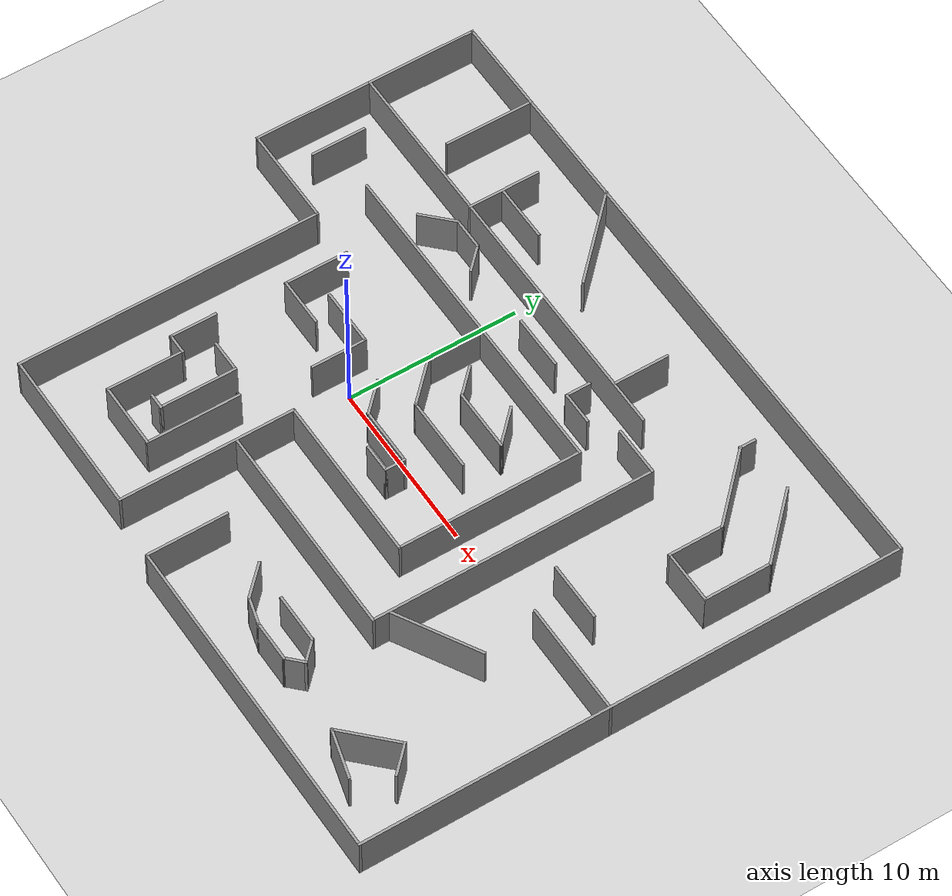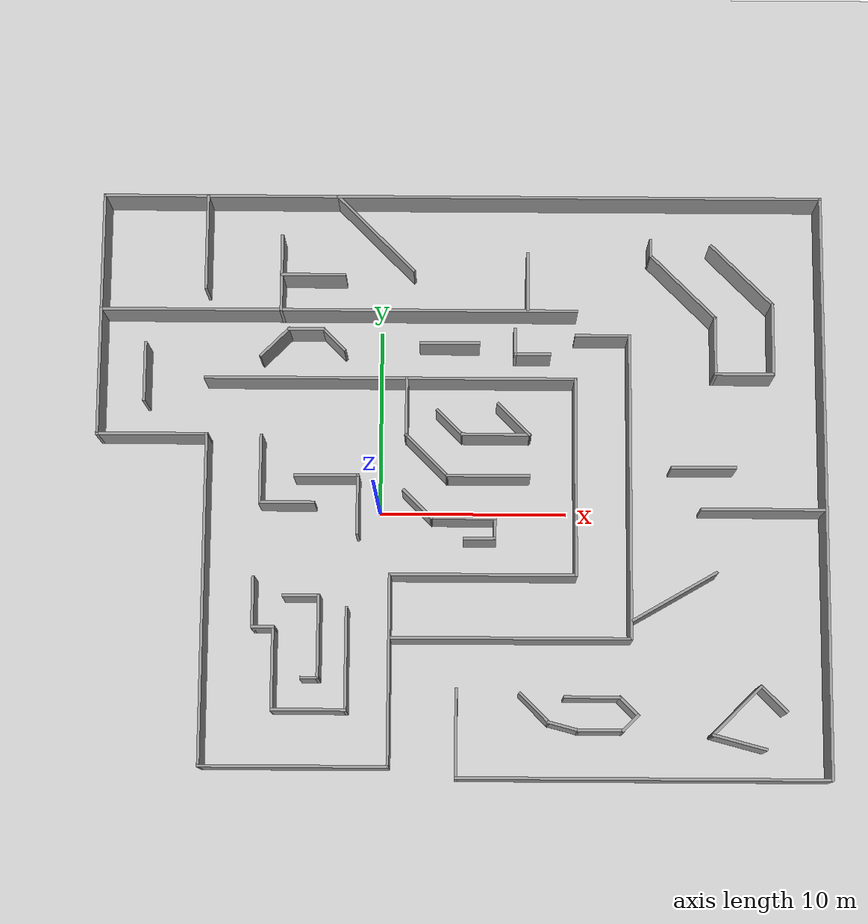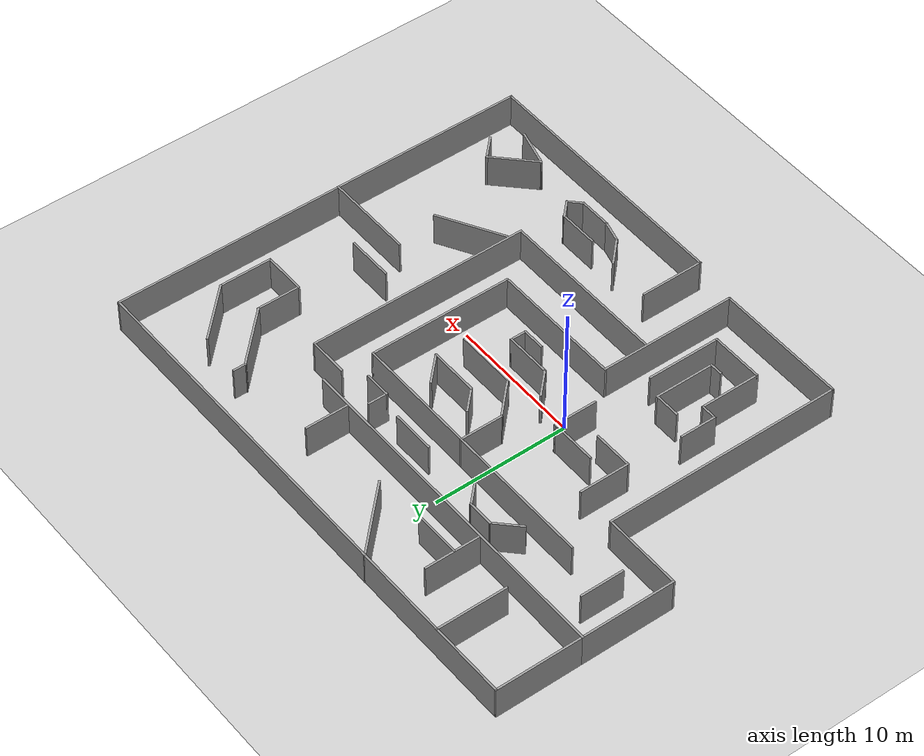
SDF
<?xml version='1.0'?>
<sdf version='1.6'>

<world name="my_map">
    <!-- A global light source -->
    <include>
      <uri>model://sun</uri>
    </include>
    <!-- A ground plane -->
    <include>
      <uri>model://ground_plane</uri>
    </include>
  <model name='maze_rooms'>
    <pose frame=''>4.33483 1.4249 0 0 -0 0</pose>
    <link name='Wall_10'>
      <collision name='Wall_10_Collision'>
        <geometry>
          <box>
            <size>25.75 0.15 2.5</size>
          </box>
        </geometry>
        <pose frame=''>0 0 1.25 0 -0 0</pose>
      </collision>
      <visual name='Wall_10_Visual'>
        <pose frame=''>0 0 1.25 0 -0 0</pose>
        <geometry>
          <box>
            <size>25.75 0.15 2.5</size>
          </box>
        </geometry>
        <material>
          <script>
            <uri>file://media/materials/scripts/gazebo.material</uri>
            <name>Gazebo/Grey</name>
          </script>
          <ambient>1 1 1 1</ambient>
        </material>
        <meta>
          <layer>0</layer>
        </meta>
      </visual>
      <pose frame=''>-6.62767 9.3062 0 0 -0 0</pose>
    </link>
    <link name='Wall_12'>
      <collision name='Wall_12_Collision'>
        <geometry>
          <box>
            <size>3 0.15 2.5</size>
          </box>
        </geometry>
        <pose frame=''>0 0 1.25 0 -0 0</pose>
      </collision>
      <visual name='Wall_12_Visual'>
        <pose frame=''>0 0 1.25 0 -0 0</pose>
        <geometry>
          <box>
            <size>3 0.15 2.5</size>
          </box>
        </geometry>
        <material>
          <script>
            <uri>file://media/materials/scripts/gazebo.material</uri>
            <name>Gazebo/Grey</name>
          </script>
          <ambient>1 1 1 1</ambient>
        </material>
        <meta>
          <layer>0</layer>
        </meta>
      </visual>
      <pose frame=''>7.59733 7.9562 0 0 -0 0</pose>
    </link>
    <link name='Wall_13'>
      <collision name='Wall_13_Collision'>
        <geometry>
          <box>
            <size>16.5 0.15 2.5</size>
          </box>
        </geometry>
        <pose frame=''>0 0 1.25 0 -0 0</pose>
      </collision>
      <visual name='Wall_13_Visual'>
        <pose frame=''>0 0 1.25 0 -0 0</pose>
        <geometry>
          <box>
            <size>16.5 0.15 2.5</size>
          </box>
        </geometry>
        <material>
          <script>
            <uri>file://media/materials/scripts/gazebo.material</uri>
            <name>Gazebo/Grey</name>
          </script>
          <ambient>1 1 1 1</ambient>
        </material>
        <meta>
          <layer>0</layer>
        </meta>
      </visual>
      <pose frame=''>9.02233 -0.218797 0 0 -0 -1.5708</pose>
    </link>
    <link name='Wall_14'>
      <collision name='Wall_14_Collision'>
        <geometry>
          <box>
            <size>12.75 0.15 2.5</size>
          </box>
        </geometry>
        <pose frame=''>0 0 1.25 0 -0 0</pose>
      </collision>
      <visual name='Wall_14_Visual'>
        <pose frame=''>0 0 1.25 0 -0 0</pose>
        <geometry>
          <box>
            <size>12.75 0.15 2.5</size>
          </box>
        </geometry>
        <material>
          <script>
            <uri>file://media/materials/scripts/gazebo.material</uri>
            <name>Gazebo/Grey</name>
          </script>
          <ambient>1 1 1 1</ambient>
        </material>
        <meta>
          <layer>0</layer>
        </meta>
      </visual>
      <pose frame=''>2.72233 -8.3938 0 0 -0 3.14159</pose>
    </link>
    <link name='Wall_16'>
      <collision name='Wall_16_Collision'>
        <geometry>
          <box>
            <size>3.75 0.15 2.5</size>
          </box>
        </geometry>
        <pose frame=''>0 0 1.25 0 -0 0</pose>
      </collision>
      <visual name='Wall_16_Visual'>
        <pose frame=''>0 0 1.25 0 -0 0</pose>
        <geometry>
          <box>
            <size>3.75 0.15 2.5</size>
          </box>
        </geometry>
        <material>
          <script>
            <uri>file://media/materials/scripts/gazebo.material</uri>
            <name>Gazebo/Grey</name>
          </script>
          <ambient>1 1 1 1</ambient>
        </material>
        <meta>
          <layer>0</layer>
        </meta>
      </visual>
      <pose frame=''>-10.6624 0.583135 0 0 -0 -1.5708</pose>
    </link>
    <link name='Wall_17'>
      <collision name='Wall_17_Collision'>
        <geometry>
          <box>
            <size>3 0.15 2.5</size>
          </box>
        </geometry>
        <pose frame=''>0 0 1.25 0 -0 0</pose>
      </collision>
      <visual name='Wall_17_Visual'>
        <pose frame=''>0 0 1.25 0 -0 0</pose>
        <geometry>
          <box>
            <size>3 0.15 2.5</size>
          </box>
        </geometry>
        <material>
          <script>
            <uri>file://media/materials/scripts/gazebo.material</uri>
            <name>Gazebo/Grey</name>
          </script>
          <ambient>1 1 1 1</ambient>
        </material>
        <meta>
          <layer>0</layer>
        </meta>
      </visual>
      <pose frame=''>-9.23743 -1.21687 0 0 -0 0</pose>
    </link>
    <link name='Wall_19'>
      <collision name='Wall_19_Collision'>
        <geometry>
          <box>
            <size>3.5 0.15 2.5</size>
          </box>
        </geometry>
        <pose frame=''>0 0 1.25 0 -0 0</pose>
      </collision>
      <visual name='Wall_19_Visual'>
        <pose frame=''>0 0 1.25 0 -0 0</pose>
        <geometry>
          <box>
            <size>3.5 0.15 2.5</size>
          </box>
        </geometry>
        <material>
          <script>
            <uri>file://media/materials/scripts/gazebo.material</uri>
            <name>Gazebo/Grey</name>
          </script>
          <ambient>1 1 1 1</ambient>
        </material>
        <meta>
          <layer>0</layer>
        </meta>
      </visual>
      <pose frame=''>-7.15202 0.255119 0 0 -0 0</pose>
    </link>
    <link name='Wall_2'>
      <collision name='Wall_2_Collision'>
        <geometry>
          <box>
            <size>20 0.15 2.5</size>
          </box>
        </geometry>
        <pose frame=''>0 0 1.25 0 -0 0</pose>
      </collision>
      <visual name='Wall_2_Visual'>
        <pose frame=''>0 0 1.25 0 -0 0</pose>
        <geometry>
          <box>
            <size>20 0.15 2.5</size>
          </box>
        </geometry>
        <material>
          <script>
            <uri>file://media/materials/scripts/gazebo.material</uri>
            <name>Gazebo/Grey</name>
          </script>
          <ambient>1 1 1 1</ambient>
        </material>
        <meta>
          <layer>0</layer>
        </meta>
      </visual>
      <pose frame=''>-3.80267 5.5562 0 0 -0 0</pose>
    </link>
    <link name='Wall_20'>
      <collision name='Wall_20_Collision'>
        <geometry>
          <box>
            <size>3.25 0.15 2.5</size>
          </box>
        </geometry>
        <pose frame=''>0 0 1.25 0 -0 0</pose>
      </collision>
      <visual name='Wall_20_Visual'>
        <pose frame=''>0 0 1.25 0 -0 0</pose>
        <geometry>
          <box>
            <size>3.25 0.15 2.5</size>
          </box>
        </geometry>
        <material>
          <script>
            <uri>file://media/materials/scripts/gazebo.material</uri>
            <name>Gazebo/Grey</name>
          </script>
          <ambient>1 1 1 1</ambient>
        </material>
        <meta>
          <layer>0</layer>
        </meta>
      </visual>
      <pose frame=''>-5.47702 -1.29488 0 0 -0 -1.5708</pose>
    </link>
    <link name='Wall_22'>
      <collision name='Wall_22_Collision'>
        <geometry>
          <box>
            <size>2.75 0.15 2.5</size>
          </box>
        </geometry>
        <pose frame=''>0 0 1.25 0 -0 0</pose>
      </collision>
      <visual name='Wall_22_Visual'>
        <pose frame=''>0 0 1.25 0 -0 0</pose>
        <geometry>
          <box>
            <size>2.75 0.15 2.5</size>
          </box>
        </geometry>
        <material>
          <script>
            <uri>file://media/materials/scripts/gazebo.material</uri>
            <name>Gazebo/Grey</name>
          </script>
          <ambient>1 1 1 1</ambient>
        </material>
        <meta>
          <layer>0</layer>
        </meta>
      </visual>
      <pose frame=''>-10.9284 -6.55112 0 0 -0 -1.5708</pose>
    </link>
    <link name='Wall_23'>
      <collision name='Wall_23_Collision'>
        <geometry>
          <box>
            <size>1.25 0.15 2.5</size>
          </box>
        </geometry>
        <pose frame=''>0 0 1.25 0 -0 0</pose>
      </collision>
      <visual name='Wall_23_Visual'>
        <pose frame=''>0 0 1.25 0 -0 0</pose>
        <geometry>
          <box>
            <size>1.25 0.15 2.5</size>
          </box>
        </geometry>
        <material>
          <script>
            <uri>file://media/materials/scripts/gazebo.material</uri>
            <name>Gazebo/Grey</name>
          </script>
          <ambient>1 1 1 1</ambient>
        </material>
        <meta>
          <layer>0</layer>
        </meta>
      </visual>
      <pose frame=''>-10.3784 -7.85112 0 0 -0 0</pose>
    </link>
    <link name='Wall_24'>
      <collision name='Wall_24_Collision'>
        <geometry>
          <box>
            <size>4.5 0.15 2.5</size>
          </box>
        </geometry>
        <pose frame=''>0 0 1.25 0 -0 0</pose>
      </collision>
      <visual name='Wall_24_Visual'>
        <pose frame=''>0 0 1.25 0 -0 0</pose>
        <geometry>
          <box>
            <size>4.5 0.15 2.5</size>
          </box>
        </geometry>
        <material>
          <script>
            <uri>file://media/materials/scripts/gazebo.material</uri>
            <name>Gazebo/Grey</name>
          </script>
          <ambient>1 1 1 1</ambient>
        </material>
        <meta>
          <layer>0</layer>
        </meta>
      </visual>
      <pose frame=''>-9.82843 -10.0261 0 0 -0 -1.5708</pose>
    </link>
    <link name='Wall_25'>
      <collision name='Wall_25_Collision'>
        <geometry>
          <box>
            <size>4 0.15 2.5</size>
          </box>
        </geometry>
        <pose frame=''>0 0 1.25 0 -0 0</pose>
      </collision>
      <visual name='Wall_25_Visual'>
        <pose frame=''>0 0 1.25 0 -0 0</pose>
        <geometry>
          <box>
            <size>4 0.15 2.5</size>
          </box>
        </geometry>
        <material>
          <script>
            <uri>file://media/materials/scripts/gazebo.material</uri>
            <name>Gazebo/Grey</name>
          </script>
          <ambient>1 1 1 1</ambient>
        </material>
        <meta>
          <layer>0</layer>
        </meta>
      </visual>
      <pose frame=''>-7.90343 -12.2011 0 0 -0 0</pose>
    </link>
    <link name='Wall_26'>
      <collision name='Wall_26_Collision'>
        <geometry>
          <box>
            <size>5.5 0.15 2.5</size>
          </box>
        </geometry>
        <pose frame=''>0 0 1.25 0 -0 0</pose>
      </collision>
      <visual name='Wall_26_Visual'>
        <pose frame=''>0 0 1.25 0 -0 0</pose>
        <geometry>
          <box>
            <size>5.5 0.15 2.5</size>
          </box>
        </geometry>
        <material>
          <script>
            <uri>file://media/materials/scripts/gazebo.material</uri>
            <name>Gazebo/Grey</name>
          </script>
          <ambient>1 1 1 1</ambient>
        </material>
        <meta>
          <layer>0</layer>
        </meta>
      </visual>
      <pose frame=''>-5.97843 -9.52612 0 0 -0 1.5708</pose>
    </link>
    <link name='Wall_28'>
      <collision name='Wall_28_Collision'>
        <geometry>
          <box>
            <size>2 0.15 2.5</size>
          </box>
        </geometry>
        <pose frame=''>0 0 1.25 0 -0 0</pose>
      </collision>
      <visual name='Wall_28_Visual'>
        <pose frame=''>0 0 1.25 0 -0 0</pose>
        <geometry>
          <box>
            <size>2 0.15 2.5</size>
          </box>
        </geometry>
        <material>
          <script>
            <uri>file://media/materials/scripts/gazebo.material</uri>
            <name>Gazebo/Grey</name>
          </script>
          <ambient>1 1 1 1</ambient>
        </material>
        <meta>
          <layer>0</layer>
        </meta>
      </visual>
      <pose frame=''>-8.38082 -6.18213 0 0 -0 0</pose>
    </link>
    <link name='Wall_29'>
      <collision name='Wall_29_Collision'>
        <geometry>
          <box>
            <size>4.5 0.15 2.5</size>
          </box>
        </geometry>
        <pose frame=''>0 0 1.25 0 -0 0</pose>
      </collision>
      <visual name='Wall_29_Visual'>
        <pose frame=''>0 0 1.25 0 -0 0</pose>
        <geometry>
          <box>
            <size>4.5 0.15 2.5</size>
          </box>
        </geometry>
        <material>
          <script>
            <uri>file://media/materials/scripts/gazebo.material</uri>
            <name>Gazebo/Grey</name>
          </script>
          <ambient>1 1 1 1</ambient>
        </material>
        <meta>
          <layer>0</layer>
        </meta>
      </visual>
      <pose frame=''>-7.45582 -8.35713 0 0 -0 -1.5708</pose>
    </link>
    <link name='Wall_3'>
      <collision name='Wall_3_Collision'>
        <geometry>
          <box>
            <size>10.75 0.15 2.5</size>
          </box>
        </geometry>
        <pose frame=''>0 0 1.25 0 -0 0</pose>
      </collision>
      <visual name='Wall_3_Visual'>
        <pose frame=''>0 0 1.25 0 -0 0</pose>
        <geometry>
          <box>
            <size>10.75 0.15 2.5</size>
          </box>
        </geometry>
        <material>
          <script>
            <uri>file://media/materials/scripts/gazebo.material</uri>
            <name>Gazebo/Grey</name>
          </script>
          <ambient>1 1 1 1</ambient>
        </material>
        <meta>
          <layer>0</layer>
        </meta>
      </visual>
      <pose frame=''>6.12233 0.256203 0 0 -0 -1.5708</pose>
    </link>
    <link name='Wall_30'>
      <collision name='Wall_30_Collision'>
        <geometry>
          <box>
            <size>1 0.15 2.5</size>
          </box>
        </geometry>
        <pose frame=''>0 0 1.25 0 -0 0</pose>
      </collision>
      <visual name='Wall_30_Visual'>
        <pose frame=''>0 0 1.25 0 -0 0</pose>
        <geometry>
          <box>
            <size>1 0.15 2.5</size>
          </box>
        </geometry>
        <material>
          <script>
            <uri>file://media/materials/scripts/gazebo.material</uri>
            <name>Gazebo/Grey</name>
          </script>
          <ambient>1 1 1 1</ambient>
        </material>
        <meta>
          <layer>0</layer>
        </meta>
      </visual>
      <pose frame=''>-7.88082 -10.5321 0 0 -0 3.14159</pose>
    </link>
    <link name='Wall_32'>
      <collision name='Wall_32_Collision'>
        <geometry>
          <box>
            <size>3.25 0.15 2.5</size>
          </box>
        </geometry>
        <pose frame=''>0 0 1.25 0 -0 0</pose>
      </collision>
      <visual name='Wall_32_Visual'>
        <pose frame=''>0 0 1.25 0 -0 0</pose>
        <geometry>
          <box>
            <size>3.25 0.15 2.5</size>
          </box>
        </geometry>
        <material>
          <script>
            <uri>file://media/materials/scripts/gazebo.material</uri>
            <name>Gazebo/Grey</name>
          </script>
          <ambient>1 1 1 1</ambient>
        </material>
        <meta>
          <layer>0</layer>
        </meta>
      </visual>
      <pose frame=''>-2.92177 4.01294 0 0 -0 1.5708</pose>
    </link>
    <link name='Wall_34'>
      <collision name='Wall_34_Collision'>
        <geometry>
          <box>
            <size>3.25 0.15 2.5</size>
          </box>
        </geometry>
        <pose frame=''>0 0 1.25 0 -0 0</pose>
      </collision>
      <visual name='Wall_34_Visual'>
        <pose frame=''>0 0 1.25 0 -0 0</pose>
        <geometry>
          <box>
            <size>3.25 0.15 2.5</size>
          </box>
        </geometry>
        <material>
          <script>
            <uri>file://media/materials/scripts/gazebo.material</uri>
            <name>Gazebo/Grey</name>
          </script>
          <ambient>1 1 1 1</ambient>
        </material>
        <meta>
          <layer>0</layer>
        </meta>
      </visual>
      <pose frame=''>-1.82576 1.36692 0 0 -0 -0.785398</pose>
    </link>
    <link name='Wall_35'>
      <collision name='Wall_35_Collision'>
        <geometry>
          <box>
            <size>4.5 0.15 2.5</size>
          </box>
        </geometry>
        <pose frame=''>0 0 1.25 0 -0 0</pose>
      </collision>
      <visual name='Wall_35_Visual'>
        <pose frame=''>0 0 1.25 0 -0 0</pose>
        <geometry>
          <box>
            <size>4.5 0.15 2.5</size>
          </box>
        </geometry>
        <material>
          <script>
            <uri>file://media/materials/scripts/gazebo.material</uri>
            <name>Gazebo/Grey</name>
          </script>
          <ambient>1 1 1 1</ambient>
        </material>
        <meta>
          <layer>0</layer>
        </meta>
      </visual>
      <pose frame=''>1.44526 0.270905 0 0 -0 0</pose>
    </link>
    <link name='Wall_37'>
      <collision name='Wall_37_Collision'>
        <geometry>
          <box>
            <size>2.5 0.15 2.5</size>
          </box>
        </geometry>
        <pose frame=''>0 0 1.25 0 -0 0</pose>
      </collision>
      <visual name='Wall_37_Visual'>
        <pose frame=''>0 0 1.25 0 -0 0</pose>
        <geometry>
          <box>
            <size>2.5 0.15 2.5</size>
          </box>
        </geometry>
        <material>
          <script>
            <uri>file://media/materials/scripts/gazebo.material</uri>
            <name>Gazebo/Grey</name>
          </script>
          <ambient>1 1 1 1</ambient>
        </material>
        <meta>
          <layer>0</layer>
        </meta>
      </visual>
      <pose frame=''>2.82208 3.34075 0 0 -0 -0.785398</pose>
    </link>
    <link name='Wall_38'>
      <collision name='Wall_38_Collision'>
        <geometry>
          <box>
            <size>3.75 0.15 2.5</size>
          </box>
        </geometry>
        <pose frame=''>0 0 1.25 0 -0 0</pose>
      </collision>
      <visual name='Wall_38_Visual'>
        <pose frame=''>0 0 1.25 0 -0 0</pose>
        <geometry>
          <box>
            <size>3.75 0.15 2.5</size>
          </box>
        </geometry>
        <material>
          <script>
            <uri>file://media/materials/scripts/gazebo.material</uri>
            <name>Gazebo/Grey</name>
          </script>
          <ambient>1 1 1 1</ambient>
        </material>
        <meta>
          <layer>0</layer>
        </meta>
      </visual>
      <pose frame=''>1.85293 2.5099 0 0 -0 3.14159</pose>
    </link>
    <link name='Wall_39'>
      <collision name='Wall_39_Collision'>
        <geometry>
          <box>
            <size>2 0.15 2.5</size>
          </box>
        </geometry>
        <pose frame=''>0 0 1.25 0 -0 0</pose>
      </collision>
      <visual name='Wall_39_Visual'>
        <pose frame=''>0 0 1.25 0 -0 0</pose>
        <geometry>
          <box>
            <size>2 0.15 2.5</size>
          </box>
        </geometry>
        <material>
          <script>
            <uri>file://media/materials/scripts/gazebo.material</uri>
            <name>Gazebo/Grey</name>
          </script>
          <ambient>1 1 1 1</ambient>
        </material>
        <meta>
          <layer>0</layer>
        </meta>
      </visual>
      <pose frame=''>-0.601146 3.16397 0 0 -0 2.35619</pose>
    </link>
    <link name='Wall_4'>
      <collision name='Wall_4_Collision'>
        <geometry>
          <box>
            <size>10 0.15 2.5</size>
          </box>
        </geometry>
        <pose frame=''>0 0 1.25 0 -0 0</pose>
      </collision>
      <visual name='Wall_4_Visual'>
        <pose frame=''>0 0 1.25 0 -0 0</pose>
        <geometry>
          <box>
            <size>10 0.15 2.5</size>
          </box>
        </geometry>
        <material>
          <script>
            <uri>file://media/materials/scripts/gazebo.material</uri>
            <name>Gazebo/Grey</name>
          </script>
          <ambient>1 1 1 1</ambient>
        </material>
        <meta>
          <layer>0</layer>
        </meta>
      </visual>
      <pose frame=''>1.19733 -5.0438 0 0 -0 3.14159</pose>
    </link>
    <link name='Wall_41'>
      <collision name='Wall_41_Collision'>
        <geometry>
          <box>
            <size>3.25 0.15 2.5</size>
          </box>
        </geometry>
        <pose frame=''>0 0 1.25 0 -0 0</pose>
      </collision>
      <visual name='Wall_41_Visual'>
        <pose frame=''>0 0 1.25 0 -0 0</pose>
        <geometry>
          <box>
            <size>3.25 0.15 2.5</size>
          </box>
        </geometry>
        <material>
          <script>
            <uri>file://media/materials/scripts/gazebo.material</uri>
            <name>Gazebo/Grey</name>
          </script>
          <ambient>1 1 1 1</ambient>
        </material>
        <meta>
          <layer>0</layer>
        </meta>
      </visual>
      <pose frame=''>-16.9759 5.86239 0 0 -0 1.5708</pose>
    </link>
    <link name='Wall_43'>
      <collision name='Wall_43_Collision'>
        <geometry>
          <box>
            <size>2.25 0.15 2.5</size>
          </box>
        </geometry>
        <pose frame=''>0 0 1.25 0 -0 0</pose>
      </collision>
      <visual name='Wall_43_Visual'>
        <pose frame=''>0 0 1.25 0 -0 0</pose>
        <geometry>
          <box>
            <size>2.25 0.15 2.5</size>
          </box>
        </geometry>
        <material>
          <script>
            <uri>file://media/materials/scripts/gazebo.material</uri>
            <name>Gazebo/Grey</name>
          </script>
          <ambient>1 1 1 1</ambient>
        </material>
        <meta>
          <layer>0</layer>
        </meta>
      </visual>
      <pose frame=''>-10.0183 7.50871 0 0 -0 0.785398</pose>
    </link>
    <link name='Wall_44'>
      <collision name='Wall_44_Collision'>
        <geometry>
          <box>
            <size>2 0.15 2.5</size>
          </box>
        </geometry>
        <pose frame=''>0 0 1.25 0 -0 0</pose>
      </collision>
      <visual name='Wall_44_Visual'>
        <pose frame=''>0 0 1.25 0 -0 0</pose>
        <geometry>
          <box>
            <size>2 0.15 2.5</size>
          </box>
        </geometry>
        <material>
          <script>
            <uri>file://media/materials/scripts/gazebo.material</uri>
            <name>Gazebo/Grey</name>
          </script>
          <ambient>1 1 1 1</ambient>
        </material>
        <meta>
          <layer>0</layer>
        </meta>
      </visual>
      <pose frame=''>-8.35085 8.25117 0 0 -0 0</pose>
    </link>
    <link name='Wall_45'>
      <collision name='Wall_45_Collision'>
        <geometry>
          <box>
            <size>1.75 0.15 2.5</size>
          </box>
        </geometry>
        <pose frame=''>0 0 1.25 0 -0 0</pose>
      </collision>
      <visual name='Wall_45_Visual'>
        <pose frame=''>0 0 1.25 0 -0 0</pose>
        <geometry>
          <box>
            <size>1.75 0.15 2.5</size>
          </box>
        </geometry>
        <material>
          <script>
            <uri>file://media/materials/scripts/gazebo.material</uri>
            <name>Gazebo/Grey</name>
          </script>
          <ambient>1 1 1 1</ambient>
        </material>
        <meta>
          <layer>0</layer>
        </meta>
      </visual>
      <pose frame=''>-6.86017 7.68549 0 0 -0 -0.785398</pose>
    </link>
    <link name='Wall_47'>
      <collision name='Wall_47_Collision'>
        <geometry>
          <box>
            <size>3.25 0.15 2.5</size>
          </box>
        </geometry>
        <pose frame=''>0 0 1.25 0 -0 0</pose>
      </collision>
      <visual name='Wall_47_Visual'>
        <pose frame=''>0 0 1.25 0 -0 0</pose>
        <geometry>
          <box>
            <size>3.25 0.15 2.5</size>
          </box>
        </geometry>
        <material>
          <script>
            <uri>file://media/materials/scripts/gazebo.material</uri>
            <name>Gazebo/Grey</name>
          </script>
          <ambient>1 1 1 1</ambient>
        </material>
        <meta>
          <layer>0</layer>
        </meta>
      </visual>
      <pose frame=''>-0.642396 7.51045 0 0 -0 0</pose>
    </link>
    <link name='Wall_49'>
      <collision name='Wall_49_Collision'>
        <geometry>
          <box>
            <size>1.5 0.15 2.5</size>
          </box>
        </geometry>
        <pose frame=''>0 0 1.25 0 -0 0</pose>
      </collision>
      <visual name='Wall_49_Visual'>
        <pose frame=''>0 0 1.25 0 -0 0</pose>
        <geometry>
          <box>
            <size>1.5 0.15 2.5</size>
          </box>
        </geometry>
        <material>
          <script>
            <uri>file://media/materials/scripts/gazebo.material</uri>
            <name>Gazebo/Grey</name>
          </script>
          <ambient>1 1 1 1</ambient>
        </material>
        <meta>
          <layer>0</layer>
        </meta>
      </visual>
      <pose frame=''>2.87622 7.59976 0 0 -0 -1.5708</pose>
    </link>
    <link name='Wall_5'>
      <collision name='Wall_5_Collision'>
        <geometry>
          <box>
            <size>10.25 0.15 2.5</size>
          </box>
        </geometry>
        <pose frame=''>0 0 1.25 0 -0 0</pose>
      </collision>
      <visual name='Wall_5_Visual'>
        <pose frame=''>0 0 1.25 0 -0 0</pose>
        <geometry>
          <box>
            <size>10.25 0.15 2.5</size>
          </box>
        </geometry>
        <material>
          <script>
            <uri>file://media/materials/scripts/gazebo.material</uri>
            <name>Gazebo/Grey</name>
          </script>
          <ambient>1 1 1 1</ambient>
        </material>
        <meta>
          <layer>0</layer>
        </meta>
      </visual>
      <pose frame=''>-3.72767 -10.0938 0 0 -0 -1.5708</pose>
    </link>
    <link name='Wall_50'>
      <collision name='Wall_50_Collision'>
        <geometry>
          <box>
            <size>2 0.15 2.5</size>
          </box>
        </geometry>
        <pose frame=''>0 0 1.25 0 -0 0</pose>
      </collision>
      <visual name='Wall_50_Visual'>
        <pose frame=''>0 0 1.25 0 -0 0</pose>
        <geometry>
          <box>
            <size>2 0.15 2.5</size>
          </box>
        </geometry>
        <material>
          <script>
            <uri>file://media/materials/scripts/gazebo.material</uri>
            <name>Gazebo/Grey</name>
          </script>
          <ambient>1 1 1 1</ambient>
        </material>
        <meta>
          <layer>0</layer>
        </meta>
      </visual>
      <pose frame=''>3.80122 6.92476 0 0 -0 0</pose>
    </link>
    <link name='Wall_52'>
      <collision name='Wall_52_Collision'>
        <geometry>
          <box>
            <size>2.25 0.15 2.5</size>
          </box>
        </geometry>
        <pose frame=''>0 0 1.25 0 -0 0</pose>
      </collision>
      <visual name='Wall_52_Visual'>
        <pose frame=''>0 0 1.25 0 -0 0</pose>
        <geometry>
          <box>
            <size>2.25 0.15 2.5</size>
          </box>
        </geometry>
        <material>
          <script>
            <uri>file://media/materials/scripts/gazebo.material</uri>
            <name>Gazebo/Grey</name>
          </script>
          <ambient>1 1 1 1</ambient>
        </material>
        <meta>
          <layer>0</layer>
        </meta>
      </visual>
      <pose frame=''>-2.27459 -1.27744 0 0 -0 -0.785398</pose>
    </link>
    <link name='Wall_53'>
      <collision name='Wall_53_Collision'>
        <geometry>
          <box>
            <size>3.5 0.15 2.5</size>
          </box>
        </geometry>
        <pose frame=''>0 0 1.25 0 -0 0</pose>
      </collision>
      <visual name='Wall_53_Visual'>
        <pose frame=''>0 0 1.25 0 -0 0</pose>
        <geometry>
          <box>
            <size>3.5 0.15 2.5</size>
          </box>
        </geometry>
        <material>
          <script>
            <uri>file://media/materials/scripts/gazebo.material</uri>
            <name>Gazebo/Grey</name>
          </script>
          <ambient>1 1 1 1</ambient>
        </material>
        <meta>
          <layer>0</layer>
        </meta>
      </visual>
      <pose frame=''>0.142871 -2.0199 0 0 -0 0</pose>
    </link>
    <link name='Wall_54'>
      <collision name='Wall_54_Collision'>
        <geometry>
          <box>
            <size>1.25 0.15 2.5</size>
          </box>
        </geometry>
        <pose frame=''>0 0 1.25 0 -0 0</pose>
      </collision>
      <visual name='Wall_54_Visual'>
        <pose frame=''>0 0 1.25 0 -0 0</pose>
        <geometry>
          <box>
            <size>1.25 0.15 2.5</size>
          </box>
        </geometry>
        <material>
          <script>
            <uri>file://media/materials/scripts/gazebo.material</uri>
            <name>Gazebo/Grey</name>
          </script>
          <ambient>1 1 1 1</ambient>
        </material>
        <meta>
          <layer>0</layer>
        </meta>
      </visual>
      <pose frame=''>1.81787 -2.5699 0 0 -0 -1.5708</pose>
    </link>
    <link name='Wall_55'>
      <collision name='Wall_55_Collision'>
        <geometry>
          <box>
            <size>1.75 0.15 2.5</size>
          </box>
        </geometry>
        <pose frame=''>0 0 1.25 0 -0 0</pose>
      </collision>
      <visual name='Wall_55_Visual'>
        <pose frame=''>0 0 1.25 0 -0 0</pose>
        <geometry>
          <box>
            <size>1.75 0.15 2.5</size>
          </box>
        </geometry>
        <material>
          <script>
            <uri>file://media/materials/scripts/gazebo.material</uri>
            <name>Gazebo/Grey</name>
          </script>
          <ambient>1 1 1 1</ambient>
        </material>
        <meta>
          <layer>0</layer>
        </meta>
      </visual>
      <pose frame=''>1.01787 -3.1199 0 0 -0 3.14159</pose>
    </link>
    <link name='Wall_57'>
      <collision name='Wall_57_Collision'>
        <geometry>
          <box>
            <size>3.25 0.15 2.5</size>
          </box>
        </geometry>
        <pose frame=''>0 0 1.25 0 -0 0</pose>
      </collision>
      <visual name='Wall_57_Visual'>
        <pose frame=''>0 0 1.25 0 -0 0</pose>
        <geometry>
          <box>
            <size>3.25 0.15 2.5</size>
          </box>
        </geometry>
        <material>
          <script>
            <uri>file://media/materials/scripts/gazebo.material</uri>
            <name>Gazebo/Grey</name>
          </script>
          <ambient>1 1 1 1</ambient>
        </material>
        <meta>
          <layer>0</layer>
        </meta>
      </visual>
      <pose frame=''>3.56205 10.9509 0 0 -0 1.5708</pose>
    </link>
    <link name='Wall_59'>
      <collision name='Wall_59_Collision'>
        <geometry>
          <box>
            <size>6.5 0.15 2.5</size>
          </box>
        </geometry>
        <pose frame=''>0 0 1.25 0 -0 0</pose>
      </collision>
      <visual name='Wall_59_Visual'>
        <pose frame=''>0 0 1.25 0 -0 0</pose>
        <geometry>
          <box>
            <size>6.5 0.15 2.5</size>
          </box>
        </geometry>
        <material>
          <script>
            <uri>file://media/materials/scripts/gazebo.material</uri>
            <name>Gazebo/Grey</name>
          </script>
          <ambient>1 1 1 1</ambient>
        </material>
        <meta>
          <layer>0</layer>
        </meta>
      </visual>
      <pose frame=''>-19.4277 12.4812 0 0 -0 1.5708</pose>
    </link>
    <link name='Wall_6'>
      <collision name='Wall_6_Collision'>
        <geometry>
          <box>
            <size>10 0.15 2.5</size>
          </box>
        </geometry>
        <pose frame=''>0 0 1.25 0 -0 0</pose>
      </collision>
      <visual name='Wall_6_Visual'>
        <pose frame=''>0 0 1.25 0 -0 0</pose>
        <geometry>
          <box>
            <size>10 0.15 2.5</size>
          </box>
        </geometry>
        <material>
          <script>
            <uri>file://media/materials/scripts/gazebo.material</uri>
            <name>Gazebo/Grey</name>
          </script>
          <ambient>1 1 1 1</ambient>
        </material>
        <meta>
          <layer>0</layer>
        </meta>
      </visual>
      <pose frame=''>-8.65267 -15.1438 0 0 -0 3.14159</pose>
    </link>
    <link name='Wall_60'>
      <collision name='Wall_60_Collision'>
        <geometry>
          <box>
            <size>39 0.15 2.5</size>
          </box>
        </geometry>
        <pose frame=''>0 0 1.25 0 -0 0</pose>
      </collision>
      <visual name='Wall_60_Visual'>
        <pose frame=''>0 0 1.25 0 -0 0</pose>
        <geometry>
          <box>
            <size>39 0.15 2.5</size>
          </box>
        </geometry>
        <material>
          <script>
            <uri>file://media/materials/scripts/gazebo.material</uri>
            <name>Gazebo/Grey</name>
          </script>
          <ambient>1 1 1 1</ambient>
        </material>
        <meta>
          <layer>0</layer>
        </meta>
      </visual>
      <pose frame=''>-0.002669 15.6562 0 0 -0 0</pose>
    </link>
    <link name='Wall_61'>
      <collision name='Wall_61_Collision'>
        <geometry>
          <box>
            <size>31.5 0.15 2.5</size>
          </box>
        </geometry>
        <pose frame=''>0 0 1.25 0 -0 0</pose>
      </collision>
      <visual name='Wall_61_Visual'>
        <pose frame=''>0 0 1.25 0 -0 0</pose>
        <geometry>
          <box>
            <size>31.5 0.15 2.5</size>
          </box>
        </geometry>
        <material>
          <script>
            <uri>file://media/materials/scripts/gazebo.material</uri>
            <name>Gazebo/Grey</name>
          </script>
          <ambient>1 1 1 1</ambient>
        </material>
        <meta>
          <layer>0</layer>
        </meta>
      </visual>
      <pose frame=''>19.4223 -0.018797 0 0 -0 -1.5708</pose>
    </link>
    <link name='Wall_62'>
      <collision name='Wall_62_Collision'>
        <geometry>
          <box>
            <size>19.75 0.15 2.5</size>
          </box>
        </geometry>
        <pose frame=''>0 0 1.25 0 -0 0</pose>
      </collision>
      <visual name='Wall_62_Visual'>
        <pose frame=''>0 0 1.25 0 -0 0</pose>
        <geometry>
          <box>
            <size>19.75 0.15 2.5</size>
          </box>
        </geometry>
        <material>
          <script>
            <uri>file://media/materials/scripts/gazebo.material</uri>
            <name>Gazebo/Grey</name>
          </script>
          <ambient>1 1 1 1</ambient>
        </material>
        <meta>
          <layer>0</layer>
        </meta>
      </visual>
      <pose frame=''>9.62233 -15.6938 0 0 -0 3.14159</pose>
    </link>
    <link name='Wall_63'>
      <collision name='Wall_63_Collision'>
        <geometry>
          <box>
            <size>4.75 0.15 2.5</size>
          </box>
        </geometry>
        <pose frame=''>0 0 1.25 0 -0 0</pose>
      </collision>
      <visual name='Wall_63_Visual'>
        <pose frame=''>0 0 1.25 0 -0 0</pose>
        <geometry>
          <box>
            <size>4.75 0.15 2.5</size>
          </box>
        </geometry>
        <material>
          <script>
            <uri>file://media/materials/scripts/gazebo.material</uri>
            <name>Gazebo/Grey</name>
          </script>
          <ambient>1 1 1 1</ambient>
        </material>
        <meta>
          <layer>0</layer>
        </meta>
      </visual>
      <pose frame=''>-0.177669 -13.3938 0 0 -0 1.5708</pose>
    </link>
    <link name='Wall_65'>
      <collision name='Wall_65_Collision'>
        <geometry>
          <box>
            <size>5.25 0.15 2.5</size>
          </box>
        </geometry>
        <pose frame=''>0 0 1.25 0 -0 0</pose>
      </collision>
      <visual name='Wall_65_Visual'>
        <pose frame=''>0 0 1.25 0 -0 0</pose>
        <geometry>
          <box>
            <size>5.25 0.15 2.5</size>
          </box>
        </geometry>
        <material>
          <script>
            <uri>file://media/materials/scripts/gazebo.material</uri>
            <name>Gazebo/Grey</name>
          </script>
          <ambient>1 1 1 1</ambient>
        </material>
        <meta>
          <layer>0</layer>
        </meta>
      </visual>
      <pose frame=''>-13.8163 13.0776 0 0 -0 -1.5708</pose>
    </link>
    <link name='Wall_67'>
      <collision name='Wall_67_Collision'>
        <geometry>
          <box>
            <size>4.25 0.15 2.5</size>
          </box>
        </geometry>
        <pose frame=''>0 0 1.25 0 -0 0</pose>
      </collision>
      <visual name='Wall_67_Visual'>
        <pose frame=''>0 0 1.25 0 -0 0</pose>
        <geometry>
          <box>
            <size>4.25 0.15 2.5</size>
          </box>
        </geometry>
        <material>
          <script>
            <uri>file://media/materials/scripts/gazebo.material</uri>
            <name>Gazebo/Grey</name>
          </script>
          <ambient>1 1 1 1</ambient>
        </material>
        <meta>
          <layer>0</layer>
        </meta>
      </visual>
      <pose frame=''>-9.73553 11.3454 0 0 -0 1.5708</pose>
    </link>
    <link name='Wall_69'>
      <collision name='Wall_69_Collision'>
        <geometry>
          <box>
            <size>6 0.15 2.5</size>
          </box>
        </geometry>
        <pose frame=''>0 0 1.25 0 -0 0</pose>
      </collision>
      <visual name='Wall_69_Visual'>
        <pose frame=''>0 0 1.25 0 -0 0</pose>
        <geometry>
          <box>
            <size>6 0.15 2.5</size>
          </box>
        </geometry>
        <material>
          <script>
            <uri>file://media/materials/scripts/gazebo.material</uri>
            <name>Gazebo/Grey</name>
          </script>
          <ambient>1 1 1 1</ambient>
        </material>
        <meta>
          <layer>0</layer>
        </meta>
      </visual>
      <pose frame=''>-4.67704 13.5944 0 0 -0 -0.785398</pose>
    </link>
    <link name='Wall_7'>
      <collision name='Wall_7_Collision'>
        <geometry>
          <box>
            <size>17.75 0.15 2.5</size>
          </box>
        </geometry>
        <pose frame=''>0 0 1.25 0 -0 0</pose>
      </collision>
      <visual name='Wall_7_Visual'>
        <pose frame=''>0 0 1.25 0 -0 0</pose>
        <geometry>
          <box>
            <size>17.75 0.15 2.5</size>
          </box>
        </geometry>
        <material>
          <script>
            <uri>file://media/materials/scripts/gazebo.material</uri>
            <name>Gazebo/Grey</name>
          </script>
          <ambient>1 1 1 1</ambient>
        </material>
        <meta>
          <layer>0</layer>
        </meta>
      </visual>
      <pose frame=''>-13.5777 -6.3438 0 0 -0 1.5708</pose>
    </link>
    <link name='Wall_71'>
      <collision name='Wall_71_Collision'>
        <geometry>
          <box>
            <size>3.5 0.15 2.5</size>
          </box>
        </geometry>
        <pose frame=''>0 0 1.25 0 -0 0</pose>
      </collision>
      <visual name='Wall_71_Visual'>
        <pose frame=''>0 0 1.25 0 -0 0</pose>
        <geometry>
          <box>
            <size>3.5 0.15 2.5</size>
          </box>
        </geometry>
        <material>
          <script>
            <uri>file://media/materials/scripts/gazebo.material</uri>
            <name>Gazebo/Grey</name>
          </script>
          <ambient>1 1 1 1</ambient>
        </material>
        <meta>
          <layer>0</layer>
        </meta>
      </visual>
      <pose frame=''>-8.02535 11.2654 0 0 -0 0</pose>
    </link>
    <link name='Wall_73'>
      <collision name='Wall_73_Collision'>
        <geometry>
          <box>
            <size>4.75 0.15 2.5</size>
          </box>
        </geometry>
        <pose frame=''>0 0 1.25 0 -0 0</pose>
      </collision>
      <visual name='Wall_73_Visual'>
        <pose frame=''>0 0 1.25 0 -0 0</pose>
        <geometry>
          <box>
            <size>4.75 0.15 2.5</size>
          </box>
        </geometry>
        <material>
          <script>
            <uri>file://media/materials/scripts/gazebo.material</uri>
            <name>Gazebo/Grey</name>
          </script>
          <ambient>1 1 1 1</ambient>
        </material>
        <meta>
          <layer>0</layer>
        </meta>
      </visual>
      <pose frame=''>15.1088 11.3628 0 0 -0 -0.785398</pose>
    </link>
    <link name='Wall_74'>
      <collision name='Wall_74_Collision'>
        <geometry>
          <box>
            <size>4 0.15 2.5</size>
          </box>
        </geometry>
        <pose frame=''>0 0 1.25 0 -0 0</pose>
      </collision>
      <visual name='Wall_74_Visual'>
        <pose frame=''>0 0 1.25 0 -0 0</pose>
        <geometry>
          <box>
            <size>4 0.15 2.5</size>
          </box>
        </geometry>
        <material>
          <script>
            <uri>file://media/materials/scripts/gazebo.material</uri>
            <name>Gazebo/Grey</name>
          </script>
          <ambient>1 1 1 1</ambient>
        </material>
        <meta>
          <layer>0</layer>
        </meta>
      </visual>
      <pose frame=''>16.7352 7.81145 0 0 -0 -1.5708</pose>
    </link>
    <link name='Wall_75'>
      <collision name='Wall_75_Collision'>
        <geometry>
          <box>
            <size>3.25 0.15 2.5</size>
          </box>
        </geometry>
        <pose frame=''>0 0 1.25 0 -0 0</pose>
      </collision>
      <visual name='Wall_75_Visual'>
        <pose frame=''>0 0 1.25 0 -0 0</pose>
        <geometry>
          <box>
            <size>3.25 0.15 2.5</size>
          </box>
        </geometry>
        <material>
          <script>
            <uri>file://media/materials/scripts/gazebo.material</uri>
            <name>Gazebo/Grey</name>
          </script>
          <ambient>1 1 1 1</ambient>
        </material>
        <meta>
          <layer>0</layer>
        </meta>
      </visual>
      <pose frame=''>15.1851 5.88645 0 0 -0 3.14159</pose>
    </link>
    <link name='Wall_76'>
      <collision name='Wall_76_Collision'>
        <geometry>
          <box>
            <size>3.25 0.15 2.5</size>
          </box>
        </geometry>
        <pose frame=''>0 0 1.25 0 -0 0</pose>
      </collision>
      <visual name='Wall_76_Visual'>
        <pose frame=''>0 0 1.25 0 -0 0</pose>
        <geometry>
          <box>
            <size>3.25 0.15 2.5</size>
          </box>
        </geometry>
        <material>
          <script>
            <uri>file://media/materials/scripts/gazebo.material</uri>
            <name>Gazebo/Grey</name>
          </script>
          <ambient>1 1 1 1</ambient>
        </material>
        <meta>
          <layer>0</layer>
        </meta>
      </visual>
      <pose frame=''>13.6351 7.43645 0 0 -0 1.5708</pose>
    </link>
    <link name='Wall_77'>
      <collision name='Wall_77_Collision'>
        <geometry>
          <box>
            <size>5 0.15 2.5</size>
          </box>
        </geometry>
        <pose frame=''>0 0 1.25 0 -0 0</pose>
      </collision>
      <visual name='Wall_77_Visual'>
        <pose frame=''>0 0 1.25 0 -0 0</pose>
        <geometry>
          <box>
            <size>5 0.15 2.5</size>
          </box>
        </geometry>
        <material>
          <script>
            <uri>file://media/materials/scripts/gazebo.material</uri>
            <name>Gazebo/Grey</name>
          </script>
          <ambient>1 1 1 1</ambient>
        </material>
        <meta>
          <layer>0</layer>
        </meta>
      </visual>
      <pose frame=''>11.9204 10.7012 0 0 -0 2.35619</pose>
    </link>
    <link name='Wall_78'>
      <collision name='Wall_78_Collision'>
        <geometry>
          <box>
            <size>1 0.15 2.5</size>
          </box>
        </geometry>
        <pose frame=''>0 0 1.25 0 -0 0</pose>
      </collision>
      <visual name='Wall_78_Visual'>
        <pose frame=''>0 0 1.25 0 -0 0</pose>
        <geometry>
          <box>
            <size>1 0.15 2.5</size>
          </box>
        </geometry>
        <material>
          <script>
            <uri>file://media/materials/scripts/gazebo.material</uri>
            <name>Gazebo/Grey</name>
          </script>
          <ambient>1 1 1 1</ambient>
        </material>
        <meta>
          <layer>0</layer>
        </meta>
      </visual>
      <pose frame=''>10.2057 12.8409 0 0 -0 1.5708</pose>
    </link>
    <link name='Wall_8'>
      <collision name='Wall_8_Collision'>
        <geometry>
          <box>
            <size>6 0.15 2.5</size>
          </box>
        </geometry>
        <pose frame=''>0 0 1.25 0 -0 0</pose>
      </collision>
      <visual name='Wall_8_Visual'>
        <pose frame=''>0 0 1.25 0 -0 0</pose>
        <geometry>
          <box>
            <size>6 0.15 2.5</size>
          </box>
        </geometry>
        <material>
          <script>
            <uri>file://media/materials/scripts/gazebo.material</uri>
            <name>Gazebo/Grey</name>
          </script>
          <ambient>1 1 1 1</ambient>
        </material>
        <meta>
          <layer>0</layer>
        </meta>
      </visual>
      <pose frame=''>-16.5027 2.4562 0 0 -0 3.14159</pose>
    </link>
    <link name='Wall_80'>
      <collision name='Wall_80_Collision'>
        <geometry>
          <box>
            <size>3.5 0.15 2.5</size>
          </box>
        </geometry>
        <pose frame=''>0 0 1.25 0 -0 0</pose>
      </collision>
      <visual name='Wall_80_Visual'>
        <pose frame=''>0 0 1.25 0 -0 0</pose>
        <geometry>
          <box>
            <size>3.5 0.15 2.5</size>
          </box>
        </geometry>
        <material>
          <script>
            <uri>file://media/materials/scripts/gazebo.material</uri>
            <name>Gazebo/Grey</name>
          </script>
          <ambient>1 1 1 1</ambient>
        </material>
        <meta>
          <layer>0</layer>
        </meta>
      </visual>
      <pose frame=''>12.9412 0.782115 0 0 -0 0</pose>
    </link>
    <link name='Wall_82'>
      <collision name='Wall_82_Collision'>
        <geometry>
          <box>
            <size>6.75 0.15 2.5</size>
          </box>
        </geometry>
        <pose frame=''>0 0 1.25 0 -0 0</pose>
      </collision>
      <visual name='Wall_82_Visual'>
        <pose frame=''>0 0 1.25 0 -0 0</pose>
        <geometry>
          <box>
            <size>6.75 0.15 2.5</size>
          </box>
        </geometry>
        <material>
          <script>
            <uri>file://media/materials/scripts/gazebo.material</uri>
            <name>Gazebo/Grey</name>
          </script>
          <ambient>1 1 1 1</ambient>
        </material>
        <meta>
          <layer>0</layer>
        </meta>
      </visual>
      <pose frame=''>16.1277 -1.46932 0 0 -0 3.14159</pose>
    </link>
    <link name='Wall_84'>
      <collision name='Wall_84_Collision'>
        <geometry>
          <box>
            <size>5.25 0.15 2.5</size>
          </box>
        </geometry>
        <pose frame=''>0 0 1.25 0 -0 0</pose>
      </collision>
      <visual name='Wall_84_Visual'>
        <pose frame=''>0 0 1.25 0 -0 0</pose>
        <geometry>
          <box>
            <size>5.25 0.15 2.5</size>
          </box>
        </geometry>
        <material>
          <script>
            <uri>file://media/materials/scripts/gazebo.material</uri>
            <name>Gazebo/Grey</name>
          </script>
          <ambient>1 1 1 1</ambient>
        </material>
        <meta>
          <layer>0</layer>
        </meta>
      </visual>
      <pose frame=''>11.3287 -6.13954 0 0 -0 0.523599</pose>
    </link>
    <link name='Wall_86'>
      <collision name='Wall_86_Collision'>
        <geometry>
          <box>
            <size>3 0.15 2.5</size>
          </box>
        </geometry>
        <pose frame=''>0 0 1.25 0 -0 0</pose>
      </collision>
      <visual name='Wall_86_Visual'>
        <pose frame=''>0 0 1.25 0 -0 0</pose>
        <geometry>
          <box>
            <size>3 0.15 2.5</size>
          </box>
        </geometry>
        <material>
          <script>
            <uri>file://media/materials/scripts/gazebo.material</uri>
            <name>Gazebo/Grey</name>
          </script>
          <ambient>1 1 1 1</ambient>
        </material>
        <meta>
          <layer>0</layer>
        </meta>
      </visual>
      <pose frame=''>6.95706 -11.4601 0 0 -0 0</pose>
    </link>
    <link name='Wall_87'>
      <collision name='Wall_87_Collision'>
        <geometry>
          <box>
            <size>1.5 0.15 2.5</size>
          </box>
        </geometry>
        <pose frame=''>0 0 1.25 0 -0 0</pose>
      </collision>
      <visual name='Wall_87_Visual'>
        <pose frame=''>0 0 1.25 0 -0 0</pose>
        <geometry>
          <box>
            <size>1.5 0.15 2.5</size>
          </box>
        </geometry>
        <material>
          <script>
            <uri>file://media/materials/scripts/gazebo.material</uri>
            <name>Gazebo/Grey</name>
          </script>
          <ambient>1 1 1 1</ambient>
        </material>
        <meta>
          <layer>0</layer>
        </meta>
      </visual>
      <pose frame=''>8.85936 -11.9374 0 0 -0 -0.785398</pose>
    </link>
    <link name='Wall_88'>
      <collision name='Wall_88_Collision'>
        <geometry>
          <box>
            <size>1.25 0.15 2.5</size>
          </box>
        </geometry>
        <pose frame=''>0 0 1.25 0 -0 0</pose>
      </collision>
      <visual name='Wall_88_Visual'>
        <pose frame=''>0 0 1.25 0 -0 0</pose>
        <geometry>
          <box>
            <size>1.25 0.15 2.5</size>
          </box>
        </geometry>
        <material>
          <script>
            <uri>file://media/materials/scripts/gazebo.material</uri>
            <name>Gazebo/Grey</name>
          </script>
          <ambient>1 1 1 1</ambient>
        </material>
        <meta>
          <layer>0</layer>
        </meta>
      </visual>
      <pose frame=''>8.94774 -12.8036 0 0 -0 -2.35619</pose>
    </link>
    <link name='Wall_89'>
      <collision name='Wall_89_Collision'>
        <geometry>
          <box>
            <size>2.5 0.15 2.5</size>
          </box>
        </geometry>
        <pose frame=''>0 0 1.25 0 -0 0</pose>
      </collision>
      <visual name='Wall_89_Visual'>
        <pose frame=''>0 0 1.25 0 -0 0</pose>
        <geometry>
          <box>
            <size>2.5 0.15 2.5</size>
          </box>
        </geometry>
        <material>
          <script>
            <uri>file://media/materials/scripts/gazebo.material</uri>
            <name>Gazebo/Grey</name>
          </script>
          <ambient>1 1 1 1</ambient>
        </material>
        <meta>
          <layer>0</layer>
        </meta>
      </visual>
      <pose frame=''>7.38384 -13.1925 0 0 -0 3.14159</pose>
    </link>
    <link name='Wall_9'>
      <collision name='Wall_9_Collision'>
        <geometry>
          <box>
            <size>7 0.15 2.5</size>
          </box>
        </geometry>
        <pose frame=''>0 0 1.25 0 -0 0</pose>
      </collision>
      <visual name='Wall_9_Visual'>
        <pose frame=''>0 0 1.25 0 -0 0</pose>
        <geometry>
          <box>
            <size>7 0.15 2.5</size>
          </box>
        </geometry>
        <material>
          <script>
            <uri>file://media/materials/scripts/gazebo.material</uri>
            <name>Gazebo/Grey</name>
          </script>
          <ambient>1 1 1 1</ambient>
        </material>
        <meta>
          <layer>0</layer>
        </meta>
      </visual>
      <pose frame=''>-19.4277 5.8812 0 0 -0 1.5708</pose>
    </link>
    <link name='Wall_90'>
      <collision name='Wall_90_Collision'>
        <geometry>
          <box>
            <size>1.75 0.15 2.5</size>
          </box>
        </geometry>
        <pose frame=''>0 0 1.25 0 -0 0</pose>
      </collision>
      <visual name='Wall_90_Visual'>
        <pose frame=''>0 0 1.25 0 -0 0</pose>
        <geometry>
          <box>
            <size>1.75 0.15 2.5</size>
          </box>
        </geometry>
        <material>
          <script>
            <uri>file://media/materials/scripts/gazebo.material</uri>
            <name>Gazebo/Grey</name>
          </script>
          <ambient>1 1 1 1</ambient>
        </material>
        <meta>
          <layer>0</layer>
        </meta>
      </visual>
      <pose frame=''>5.43609 -12.9855 0 0 -0 2.87979</pose>
    </link>
    <link name='Wall_91'>
      <collision name='Wall_91_Collision'>
        <geometry>
          <box>
            <size>2.25 0.15 2.5</size>
          </box>
        </geometry>
        <pose frame=''>0 0 1.25 0 -0 0</pose>
      </collision>
      <visual name='Wall_91_Visual'>
        <pose frame=''>0 0 1.25 0 -0 0</pose>
        <geometry>
          <box>
            <size>2.25 0.15 2.5</size>
          </box>
        </geometry>
        <material>
          <script>
            <uri>file://media/materials/scripts/gazebo.material</uri>
            <name>Gazebo/Grey</name>
          </script>
          <ambient>1 1 1 1</ambient>
        </material>
        <meta>
          <layer>0</layer>
        </meta>
      </visual>
      <pose frame=''>3.92089 -12.0359 0 0 -0 2.35619</pose>
    </link>
    <link name='Wall_93'>
      <collision name='Wall_93_Collision'>
        <geometry>
          <box>
            <size>3 0.15 2.5</size>
          </box>
        </geometry>
        <pose frame=''>0 0 1.25 0 -0 0</pose>
      </collision>
      <visual name='Wall_93_Visual'>
        <pose frame=''>0 0 1.25 0 -0 0</pose>
        <geometry>
          <box>
            <size>3 0.15 2.5</size>
          </box>
        </geometry>
        <material>
          <script>
            <uri>file://media/materials/scripts/gazebo.material</uri>
            <name>Gazebo/Grey</name>
          </script>
          <ambient>1 1 1 1</ambient>
        </material>
        <meta>
          <layer>0</layer>
        </meta>
      </visual>
      <pose frame=''>14.6389 -13.7649 0 0 -0 2.87979</pose>
    </link>
    <link name='Wall_94'>
      <collision name='Wall_94_Collision'>
        <geometry>
          <box>
            <size>3.75 0.15 2.5</size>
          </box>
        </geometry>
        <pose frame=''>0 0 1.25 0 -0 0</pose>
      </collision>
      <visual name='Wall_94_Visual'>
        <pose frame=''>0 0 1.25 0 -0 0</pose>
        <geometry>
          <box>
            <size>3.75 0.15 2.5</size>
          </box>
        </geometry>
        <material>
          <script>
            <uri>file://media/materials/scripts/gazebo.material</uri>
            <name>Gazebo/Grey</name>
          </script>
          <ambient>1 1 1 1</ambient>
        </material>
        <meta>
          <layer>0</layer>
        </meta>
      </visual>
      <pose frame=''>14.5352 -12.1233 0 0 -0 0.785398</pose>
    </link>
    <link name='Wall_95'>
      <collision name='Wall_95_Collision'>
        <geometry>
          <box>
            <size>2 0.15 2.5</size>
          </box>
        </geometry>
        <pose frame=''>0 0 1.25 0 -0 0</pose>
      </collision>
      <visual name='Wall_95_Visual'>
        <pose frame=''>0 0 1.25 0 -0 0</pose>
        <geometry>
          <box>
            <size>2 0.15 2.5</size>
          </box>
        </geometry>
        <material>
          <script>
            <uri>file://media/materials/scripts/gazebo.material</uri>
            <name>Gazebo/Grey</name>
          </script>
          <ambient>1 1 1 1</ambient>
        </material>
        <meta>
          <layer>0</layer>
        </meta>
      </visual>
      <pose frame=''>16.4621 -11.5045 0 0 -0 -0.785398</pose>
    </link>
    <static>1</static>
  </model>
</world>
</sdf>
